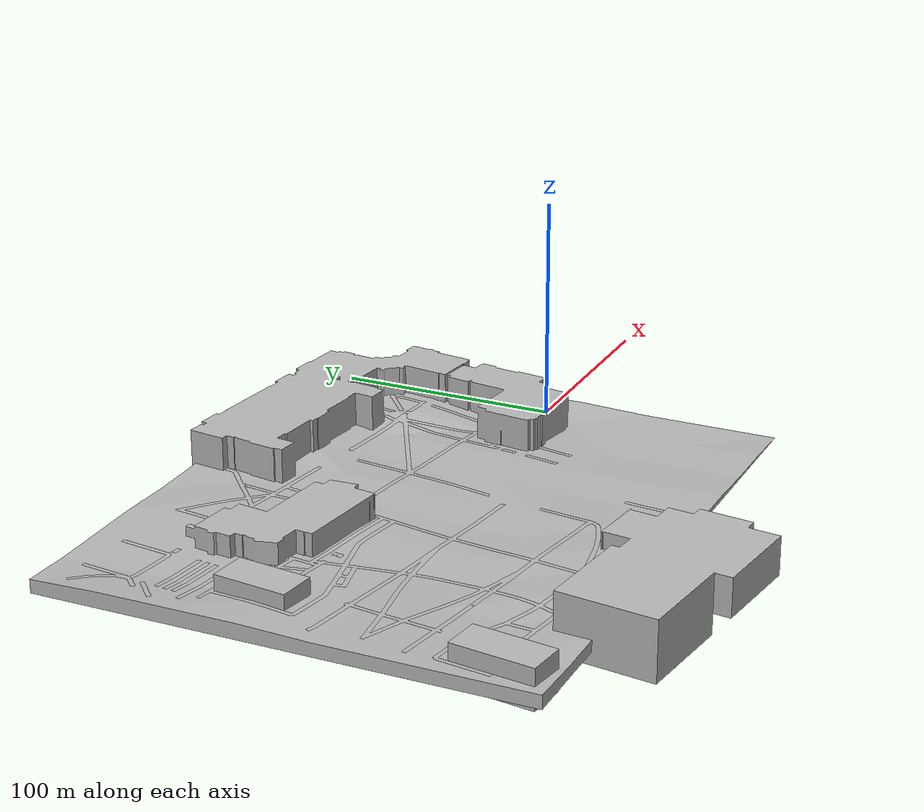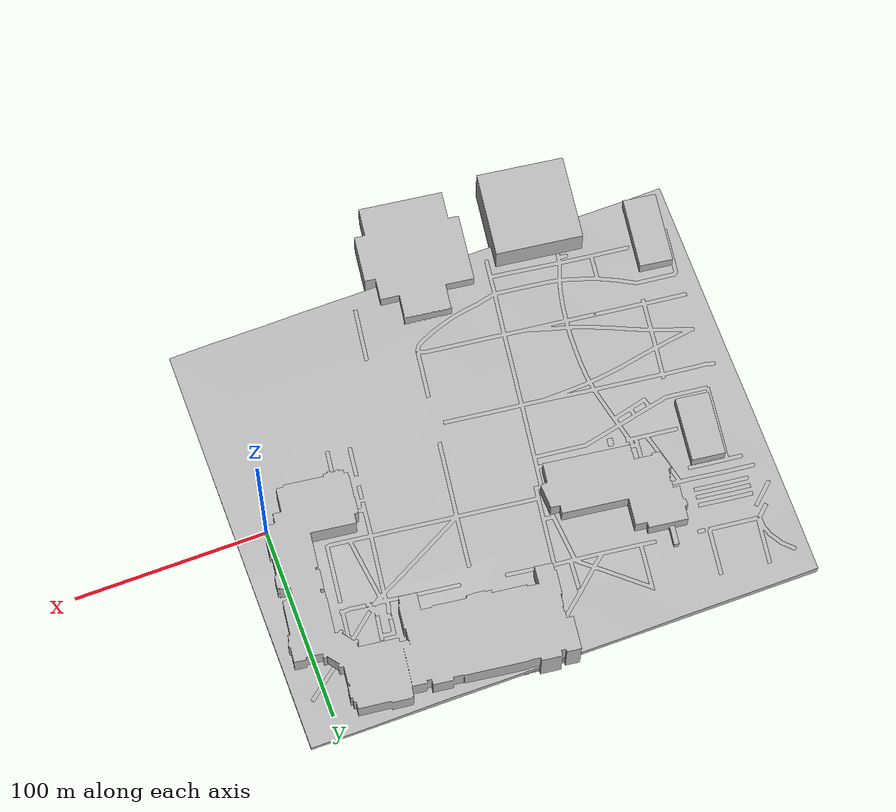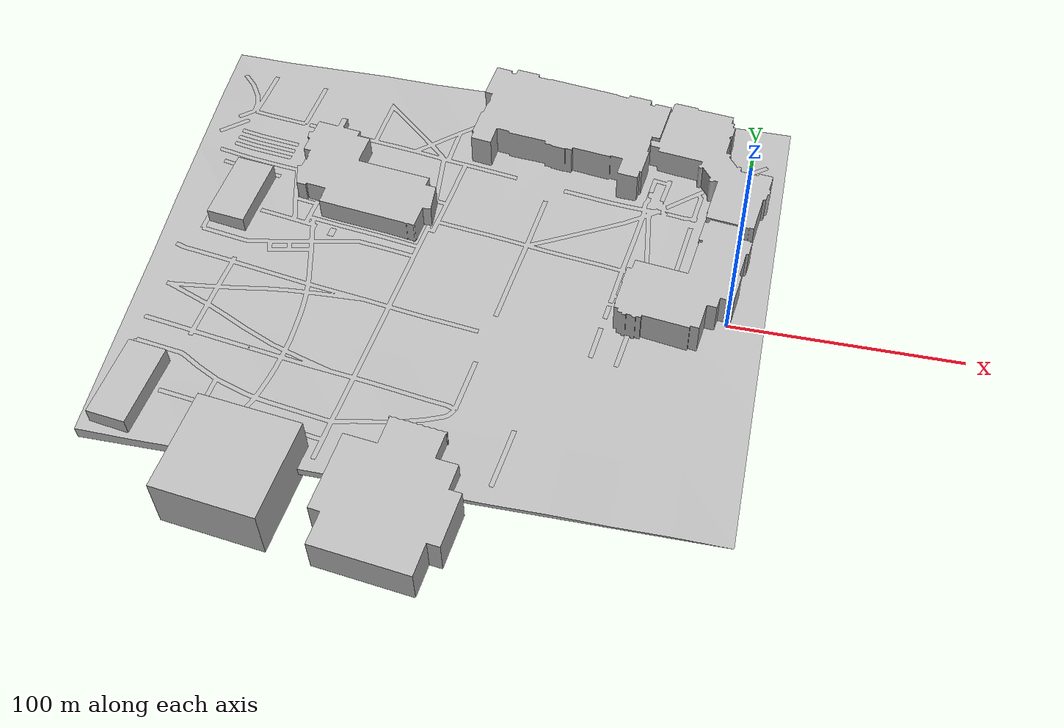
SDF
<?xml version="1.0" ?>
<sdf version="1.6">
  <world name="washu_campus">
    <physics name="1ms" type="ignored">
      <max_step_size>0.001</max_step_size>
      <real_time_factor>1.0</real_time_factor>
    </physics>

	<!-- Needed for GPS -->
	<spherical_coordinates>
      <surface_model>EARTH_WGS84</surface_model>
      <world_frame_orientation>ENU</world_frame_orientation>
      <latitude_deg>38.64817527</latitude_deg>
      <longitude_deg>-90.30128152</longitude_deg>
      <elevation>0</elevation>
      <heading_deg>0</heading_deg>
    </spherical_coordinates>

    <include>
      <uri>https://fuel.gazebosim.org/1.0/OpenRobotics/models/Sun</uri>
    </include>

    <include>
      <uri>model://washu</uri>
      <pose>0 0 0 0 0 0</pose>
    </include>
  </world>
</sdf>

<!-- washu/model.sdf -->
<sdf version="1.6">
  <model name="washu">
    <static>true</static>
    <link name="link">

      <visual name="terrain_visual">
        <geometry>
          <mesh><uri>model://washu/meshes/campus_terrain.obj</uri></mesh>
        </geometry>
      </visual>

      <collision name="terrain_collision">
        <geometry>
          <mesh><uri>model://washu/meshes/campus_terrain.obj</uri></mesh>
        </geometry>
        <surface>
          <friction>
            <ode>
              <mu>1.0</mu>   <mu2>1.0</mu2> </ode>
          </friction>
        </surface>
      </collision>

      <visual name="buildings_visual">
        <geometry>
          <mesh><uri>model://washu/meshes/campus_buildings.obj</uri></mesh>
        </geometry>
      </visual>

      <collision name="buildings_collision">
        <geometry>
          <mesh><uri>model://washu/meshes/campus_buildings.obj</uri></mesh>
        </geometry>
        </collision>

      <visual name="footways_visual">
        <geometry>
          <mesh><uri>model://washu/meshes/campus_footways.obj</uri></mesh>
        </geometry>
      </visual>
    </link>
  </model>
</sdf>
